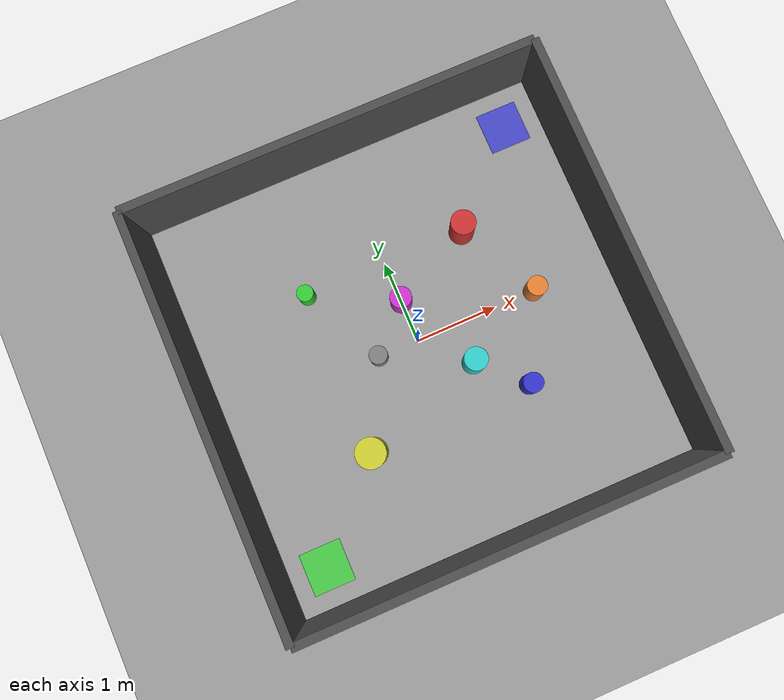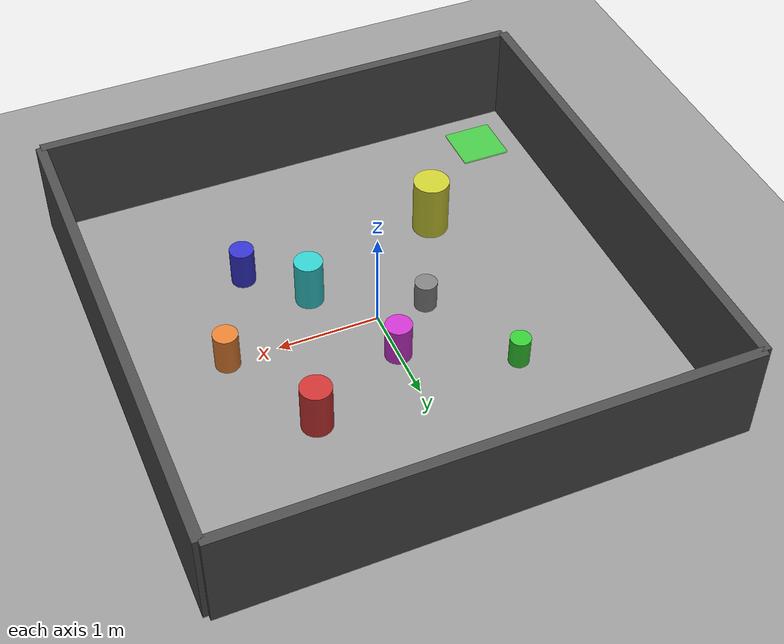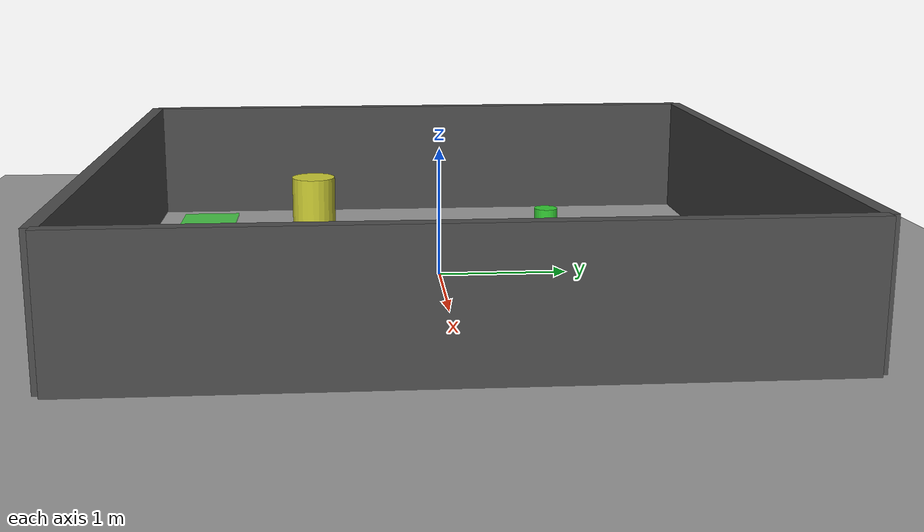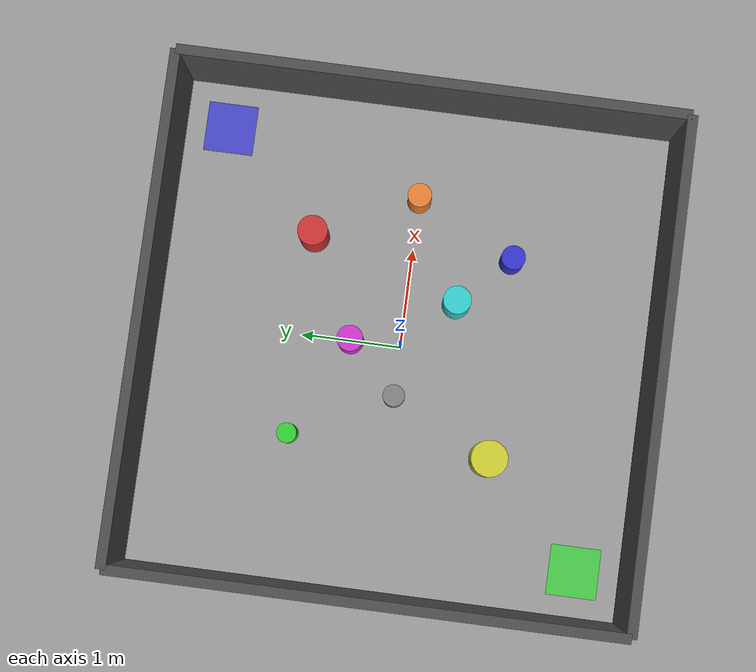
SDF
<?xml version="1.0" ?>
<sdf version="1.8">
  <world name="jetank_obstacle_course">

    <!-- Physics -->
    <physics name="1ms" type="ignored">
      <max_step_size>0.001</max_step_size>
      <real_time_factor>1.0</real_time_factor>
    </physics>

    <!-- Plugins -->
    <plugin filename="libignition-gazebo-physics-system.so" name="ignition::gazebo::systems::Physics"/>
    <plugin filename="libignition-gazebo-user-commands-system.so" name="ignition::gazebo::systems::UserCommands"/>
    <plugin filename="libignition-gazebo-scene-broadcaster-system.so" name="ignition::gazebo::systems::SceneBroadcaster"/>
    <plugin filename="libignition-gazebo-contact-system.so" name="ignition::gazebo::systems::Contact"/>
    <!-- Rendering sensors (camera, gpu_lidar) require the Sensors system + a render engine. -->
    <plugin filename="libignition-gazebo-sensors-system.so" name="ignition::gazebo::systems::Sensors">
      <render_engine>ogre2</render_engine>
    </plugin>
    <!-- IMU sensors require the Imu system. -->
    <plugin filename="libignition-gazebo-imu-system.so" name="ignition::gazebo::systems::Imu"/>

    <!-- Scene -->
    <scene>
      <ambient>0.4 0.4 0.4 1</ambient>
      <background>0.7 0.7 0.7 1</background>
      <shadows>true</shadows>
      <grid>false</grid>
    </scene>

    <!-- GUI -->
    <gui fullscreen="0">
      <!-- Fortress render stack (GzScene3D is deprecated → blank GUI). -->
      <plugin filename="MinimalScene" name="3D View">
        <ignition-gui>
          <title>3D View</title>
          <property type="bool" key="showTitleBar">false</property>
          <property type="string" key="state">docked</property>
        </ignition-gui>
        <engine>ogre2</engine>
        <scene>scene</scene>
        <ambient_light>0.4 0.4 0.4</ambient_light>
        <background_color>0.8 0.8 0.8</background_color>
        <camera_pose>0 -6 4 0 0.5 1.5708</camera_pose>
      </plugin>
      <plugin filename="GzSceneManager" name="Scene Manager"/>
      <plugin filename="InteractiveViewControl" name="Interactive view control"/>
      <plugin filename="CameraTracking" name="Camera Tracking"/>

      <plugin filename="WorldControl" name="World control">
        <ignition-gui>
          <title>World control</title>
          <property type="bool" key="showTitleBar">false</property>
          <property type="bool" key="resizable">false</property>
          <property type="double" key="height">72</property>
          <property type="double" key="width">121</property>
          <property type="double" key="z">1</property>
          <property type="string" key="state">floating</property>
          <anchors target="3D View">
            <line own="left" target="left"/>
            <line own="bottom" target="bottom"/>
          </anchors>
        </ignition-gui>
        <play_pause>true</play_pause>
        <step>true</step>
        <start_paused>true</start_paused>
      </plugin>

      <plugin filename="WorldStats" name="World stats">
        <ignition-gui>
          <title>World stats</title>
          <property type="bool" key="showTitleBar">false</property>
          <property type="bool" key="resizable">false</property>
          <property type="double" key="height">110</property>
          <property type="double" key="width">290</property>
          <property type="double" key="z">1</property>
          <property type="string" key="state">floating</property>
          <anchors target="3D View">
            <line own="right" target="right"/>
            <line own="bottom" target="bottom"/>
          </anchors>
        </ignition-gui>
        <sim_time>true</sim_time>
        <real_time>true</real_time>
        <real_time_factor>true</real_time_factor>
        <iterations>true</iterations>
      </plugin>
    </gui>

    <!-- Lighting -->
    <light type="directional" name="sun">
      <cast_shadows>true</cast_shadows>
      <pose>0 0 10 0 0 0</pose>
      <diffuse>0.8 0.8 0.8 1</diffuse>
      <specular>0.2 0.2 0.2 1</specular>
      <attenuation>
        <range>1000</range>
        <constant>0.9</constant>
        <linear>0.01</linear>
        <quadratic>0.001</quadratic>
      </attenuation>
      <direction>-0.5 0.1 -0.9</direction>
    </light>

    <!-- Ground plane with texture -->
    <model name="ground_plane">
      <static>true</static>
      <link name="link">
        <collision name="collision">
          <geometry>
            <plane>
              <normal>0 0 1</normal>
              <size>5 5</size>
            </plane>
          </geometry>
        </collision>
        <visual name="visual">
          <geometry>
            <plane>
              <normal>0 0 1</normal>
              <size>5 5</size>
            </plane>
          </geometry>
          <material>
            <ambient>0.6 0.6 0.6 1</ambient>
            <diffuse>0.6 0.6 0.6 1</diffuse>
            <specular>0.2 0.2 0.2 1</specular>
          </material>
        </visual>
      </link>
    </model>

    <!-- Arena walls -->
    <!-- North wall -->
    <model name="wall_north">
      <static>true</static>
      <pose>0 2.5 0.5 0 0 0</pose>
      <link name="link">
        <collision name="collision">
          <geometry>
            <box>
              <size>5 0.1 1.0</size>
            </box>
          </geometry>
        </collision>
        <visual name="visual">
          <geometry>
            <box>
              <size>5 0.1 1.0</size>
            </box>
          </geometry>
          <material>
            <ambient>0.3 0.3 0.3 1</ambient>
            <diffuse>0.3 0.3 0.3 1</diffuse>
          </material>
        </visual>
      </link>
    </model>

    <!-- South wall -->
    <model name="wall_south">
      <static>true</static>
      <pose>0 -2.5 0.5 0 0 0</pose>
      <link name="link">
        <collision name="collision">
          <geometry>
            <box>
              <size>5 0.1 1.0</size>
            </box>
          </geometry>
        </collision>
        <visual name="visual">
          <geometry>
            <box>
              <size>5 0.1 1.0</size>
            </box>
          </geometry>
          <material>
            <ambient>0.3 0.3 0.3 1</ambient>
            <diffuse>0.3 0.3 0.3 1</diffuse>
          </material>
        </visual>
      </link>
    </model>

    <!-- East wall -->
    <model name="wall_east">
      <static>true</static>
      <pose>2.5 0 0.5 0 0 0</pose>
      <link name="link">
        <collision name="collision">
          <geometry>
            <box>
              <size>0.1 5 1.0</size>
            </box>
          </geometry>
        </collision>
        <visual name="visual">
          <geometry>
            <box>
              <size>0.1 5 1.0</size>
            </box>
          </geometry>
          <material>
            <ambient>0.3 0.3 0.3 1</ambient>
            <diffuse>0.3 0.3 0.3 1</diffuse>
          </material>
        </visual>
      </link>
    </model>

    <!-- West wall -->
    <model name="wall_west">
      <static>true</static>
      <pose>-2.5 0 0.5 0 0 0</pose>
      <link name="link">
        <collision name="collision">
          <geometry>
            <box>
              <size>0.1 5 1.0</size>
            </box>
          </geometry>
        </collision>
        <visual name="visual">
          <geometry>
            <box>
              <size>0.1 5 1.0</size>
            </box>
          </geometry>
          <material>
            <ambient>0.3 0.3 0.3 1</ambient>
            <diffuse>0.3 0.3 0.3 1</diffuse>
          </material>
        </visual>
      </link>
    </model>

    <!-- Cylindrical obstacles (varying sizes) -->
    <model name="obstacle_1">
      <static>true</static>
      <pose>1.0 1.0 0.25 0 0 0</pose>
      <link name="link">
        <collision name="collision">
          <geometry>
            <cylinder>
              <radius>0.15</radius>
              <length>0.5</length>
            </cylinder>
          </geometry>
        </collision>
        <visual name="visual">
          <geometry>
            <cylinder>
              <radius>0.15</radius>
              <length>0.5</length>
            </cylinder>
          </geometry>
          <material>
            <ambient>0.8 0.2 0.2 1</ambient>
            <diffuse>0.8 0.2 0.2 1</diffuse>
          </material>
        </visual>
      </link>
    </model>

    <model name="obstacle_2">
      <static>true</static>
      <pose>-1.0 1.0 0.15 0 0 0</pose>
      <link name="link">
        <collision name="collision">
          <geometry>
            <cylinder>
              <radius>0.1</radius>
              <length>0.3</length>
            </cylinder>
          </geometry>
        </collision>
        <visual name="visual">
          <geometry>
            <cylinder>
              <radius>0.1</radius>
              <length>0.3</length>
            </cylinder>
          </geometry>
          <material>
            <ambient>0.2 0.8 0.2 1</ambient>
            <diffuse>0.2 0.8 0.2 1</diffuse>
          </material>
        </visual>
      </link>
    </model>

    <model name="obstacle_3">
      <static>true</static>
      <pose>1.0 -1.0 0.2 0 0 0</pose>
      <link name="link">
        <collision name="collision">
          <geometry>
            <cylinder>
              <radius>0.12</radius>
              <length>0.4</length>
            </cylinder>
          </geometry>
        </collision>
        <visual name="visual">
          <geometry>
            <cylinder>
              <radius>0.12</radius>
              <length>0.4</length>
            </cylinder>
          </geometry>
          <material>
            <ambient>0.2 0.2 0.8 1</ambient>
            <diffuse>0.2 0.2 0.8 1</diffuse>
          </material>
        </visual>
      </link>
    </model>

    <model name="obstacle_4">
      <static>true</static>
      <pose>-1.0 -1.0 0.3 0 0 0</pose>
      <link name="link">
        <collision name="collision">
          <geometry>
            <cylinder>
              <radius>0.18</radius>
              <length>0.6</length>
            </cylinder>
          </geometry>
        </collision>
        <visual name="visual">
          <geometry>
            <cylinder>
              <radius>0.18</radius>
              <length>0.6</length>
            </cylinder>
          </geometry>
          <material>
            <ambient>0.8 0.8 0.2 1</ambient>
            <diffuse>0.8 0.8 0.2 1</diffuse>
          </material>
        </visual>
      </link>
    </model>

    <model name="obstacle_5">
      <static>true</static>
      <pose>0.0 0.5 0.2 0 0 0</pose>
      <link name="link">
        <collision name="collision">
          <geometry>
            <cylinder>
              <radius>0.13</radius>
              <length>0.4</length>
            </cylinder>
          </geometry>
        </collision>
        <visual name="visual">
          <geometry>
            <cylinder>
              <radius>0.13</radius>
              <length>0.4</length>
            </cylinder>
          </geometry>
          <material>
            <ambient>0.8 0.2 0.8 1</ambient>
            <diffuse>0.8 0.2 0.8 1</diffuse>
          </material>
        </visual>
      </link>
    </model>

    <model name="obstacle_6">
      <static>true</static>
      <pose>0.5 -0.5 0.25 0 0 0</pose>
      <link name="link">
        <collision name="collision">
          <geometry>
            <cylinder>
              <radius>0.14</radius>
              <length>0.5</length>
            </cylinder>
          </geometry>
        </collision>
        <visual name="visual">
          <geometry>
            <cylinder>
              <radius>0.14</radius>
              <length>0.5</length>
            </cylinder>
          </geometry>
          <material>
            <ambient>0.2 0.8 0.8 1</ambient>
            <diffuse>0.2 0.8 0.8 1</diffuse>
          </material>
        </visual>
      </link>
    </model>

    <model name="obstacle_7">
      <static>true</static>
      <pose>-0.5 0.0 0.15 0 0 0</pose>
      <link name="link">
        <collision name="collision">
          <geometry>
            <cylinder>
              <radius>0.11</radius>
              <length>0.3</length>
            </cylinder>
          </geometry>
        </collision>
        <visual name="visual">
          <geometry>
            <cylinder>
              <radius>0.11</radius>
              <length>0.3</length>
            </cylinder>
          </geometry>
          <material>
            <ambient>0.5 0.5 0.5 1</ambient>
            <diffuse>0.5 0.5 0.5 1</diffuse>
          </material>
        </visual>
      </link>
    </model>

    <model name="obstacle_8">
      <static>true</static>
      <pose>1.5 0.0 0.2 0 0 0</pose>
      <link name="link">
        <collision name="collision">
          <geometry>
            <cylinder>
              <radius>0.12</radius>
              <length>0.4</length>
            </cylinder>
          </geometry>
        </collision>
        <visual name="visual">
          <geometry>
            <cylinder>
              <radius>0.12</radius>
              <length>0.4</length>
            </cylinder>
          </geometry>
          <material>
            <ambient>0.9 0.5 0.2 1</ambient>
            <diffuse>0.9 0.5 0.2 1</diffuse>
          </material>
        </visual>
      </link>
    </model>

    <!-- Start zone marker (green box) -->
    <model name="start_zone">
      <static>true</static>
      <pose>-2.0 -2.0 0.01 0 0 0</pose>
      <link name="link">
        <visual name="visual">
          <geometry>
            <box>
              <size>0.5 0.5 0.02</size>
            </box>
          </geometry>
          <material>
            <ambient>0 1 0 0.5</ambient>
            <diffuse>0 1 0 0.5</diffuse>
          </material>
        </visual>
      </link>
    </model>

    <!-- Goal zone marker (blue box) -->
    <model name="goal_zone">
      <static>true</static>
      <pose>2.0 2.0 0.01 0 0 0</pose>
      <link name="link">
        <visual name="visual">
          <geometry>
            <box>
              <size>0.5 0.5 0.02</size>
            </box>
          </geometry>
          <material>
            <ambient>0 0 1 0.5</ambient>
            <diffuse>0 0 1 0.5</diffuse>
          </material>
        </visual>
      </link>
    </model>

  </world>
</sdf>
